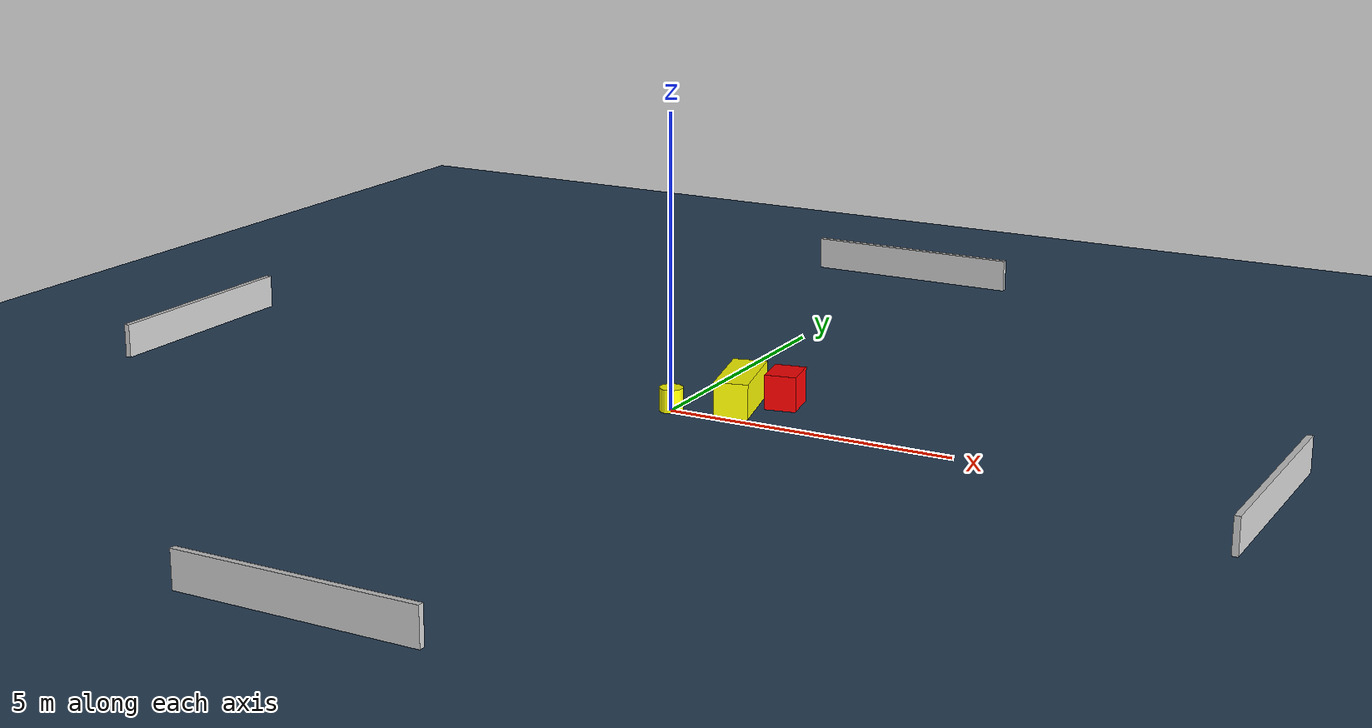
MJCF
<?xml version="1.0" ?>
<mujoco model="generated_environment">
  <option timestep="0.01" integrator="RK4" cone="elliptic"/>
  <default>
    <geom density="1"/>
  </default>
  <asset>
    <texture builtin="gradient" height="3072" name="skybox" rgb1="0.3 0.5 0.7" rgb2="0 0 0" type="skybox" width="512"/>
    <texture builtin="checker" height="300" name="groundplane" rgb1="0.2 0.3 0.4" rgb2="0.1 0.2 0.3" type="2d" width="300"/>
    <material name="groundplane" reflectance="0.2" texrepeat="5 5" texture="groundplane"/>
  </asset>
  <worldbody>
    <light dir="0 0 -1" directional="true" pos="0 0 1.5"/>
    <geom condim="3" friction="0.5 0.005 0.001" material="groundplane" name="floor" pos="0 0 0" size="0 0 0.05" type="plane"/>
    <body name="walls">
      <geom name="wall_1" condim="4" pos="-10.0 0.0 0.3" rgba="0.800000011920929 0.800000011920929 0.800000011920929 1.0" size="0.05 2.0 0.3" type="box"/>
      <geom name="wall_2" condim="4" pos="10.0 0.0 0.3" rgba="0.800000011920929 0.800000011920929 0.800000011920929 1.0" size="0.05 2.0 0.3" type="box"/>
      <geom name="wall_3" condim="4" pos="0.0 -10.0 0.3" rgba="0.800000011920929 0.800000011920929 0.800000011920929 1.0" size="2.0 0.05 0.3" type="box"/>
      <geom name="wall_4" condim="4" pos="0.0 10.0 0.3" rgba="0.800000011920929 0.800000011920929 0.800000011920929 1.0" size="2.0 0.05 0.3" type="box"/>
    </body>
    <body name="robot">
      <joint name="joint_x" type="slide" pos="0 0 0" axis="1 0 0"/>
      <joint name="joint_y" type="slide" pos="0 0 0" axis="0 1 0"/>
      <geom name="robot" type="cylinder" pos="0.0 0.0 0.2" size="0.2 0.2 0.0" mass="5.0" friction="1.0 0.005 0.0001" condim="4" rgba="1.0 1.0 0.0 1.0"/>
    </body>
    <body name="obstacle_1_movable">
      <geom name="obstacle_1_movable" condim="4" pos="0.8972564170915817 0.757845744152648 0.3" euler="0 0 283.99913358912744" friction="0.0 0.005 0.001" rgba="1.0 1.0 0.0 1.0" size="0.7109824792695716 0.2902111716461679 0.3" type="box" mass="0.1"/>
      <joint type="free"/>
    </body>
    <body name="obstacle_2_static">
      <geom name="obstacle_2_static" condim="4" pos="1.5308047083300607 1.1513160346375653 0.3" euler="0 0 190.73620751527244" friction="0.0 0.005 0.001" rgba="1.0 0.0 0.0 1.0" size="0.2697176639741201 0.32776643323066423 0.3" type="box"/>
    </body>
  </worldbody>
  <actuator>
    <motor name="actuator_x" joint="joint_x" gear="1" ctrlrange="-1 1"/>
    <motor name="actuator_y" joint="joint_y" gear="1" ctrlrange="-1 1"/>
  </actuator>
</mujoco>
